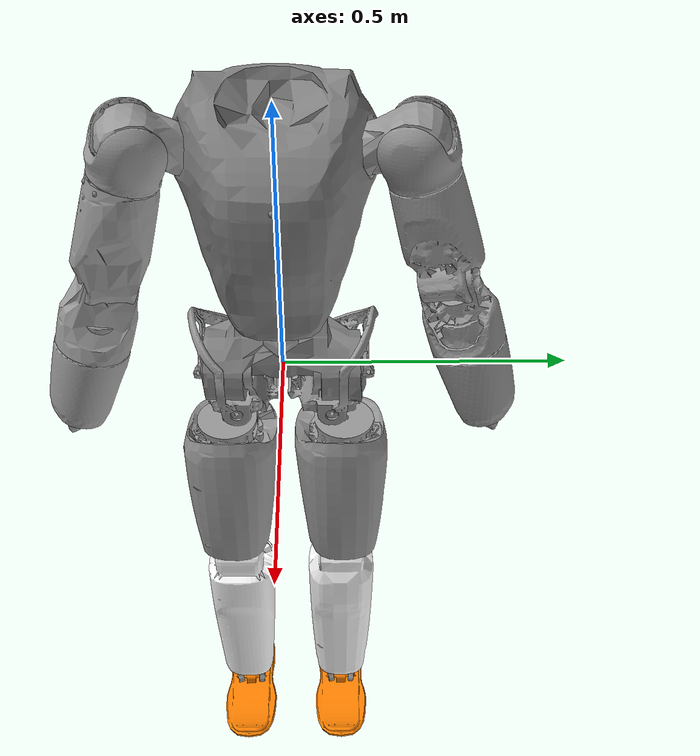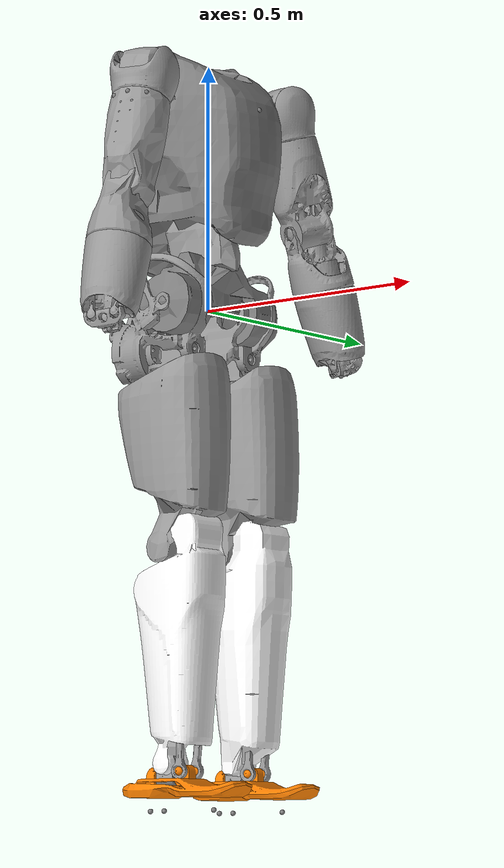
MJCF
<?xml version='1.0' encoding='utf-8'?>
<mujoco model="gene01_nohands">
  <compiler angle="radian" meshdir="../../meshes" />
  <asset>
    <mesh name="sim_gene01_torso_1" content_type="model/stl" file="sim_gene01_torso_1.stl" scale="0.001 0.001 0.001" />
    <mesh name="sim_gene01_torso_2" content_type="model/stl" file="sim_gene01_torso_2.stl" scale="0.001 0.001 0.001" />
    <mesh name="sim_gene01_l_hip_1" content_type="model/stl" file="sim_gene01_l_hip_1.stl" scale="0.001 0.001 0.001" />
    <mesh name="sim_gene01_r_hip_1" content_type="model/stl" file="sim_gene01_r_hip_1.stl" scale="0.001 0.001 0.001" />
    <mesh name="sim_gene01_r_hip_2" content_type="model/stl" file="sim_gene01_r_hip_2.stl" scale="0.001 0.001 0.001" />
    <mesh name="sim_gene01_r_upper_leg" content_type="model/stl" file="sim_gene01_r_upper_leg.stl" scale="0.001 0.001 0.001" />
    <mesh name="sim_gene01_r_lower_leg" content_type="model/stl" file="sim_gene01_r_lower_leg.stl" scale="0.001 0.001 0.001" />
    <mesh name="sim_gene01_r_ankle_1" content_type="model/stl" file="sim_gene01_r_ankle_1.stl" scale="0.001 0.001 0.001" />
    <mesh name="sim_gene01_r_crank_1" content_type="model/stl" file="sim_gene01_r_crank_1.stl" scale="0.001 0.001 0.001" />
    <mesh name="sim_gene01_r_crank_2" content_type="model/stl" file="sim_gene01_r_crank_2.stl" scale="0.001 0.001 0.001" />
    <mesh name="sim_gene01_r_ring_2" content_type="model/stl" file="sim_gene01_r_ring_2.stl" scale="0.001 0.001 0.001" />
    <mesh name="sim_gene01_r_rod_2" content_type="model/stl" file="sim_gene01_r_rod_2.stl" scale="0.001 0.001 0.001" />
    <mesh name="sim_gene01_r_ring_1" content_type="model/stl" file="sim_gene01_r_ring_1.stl" scale="0.001 0.001 0.001" />
    <mesh name="sim_gene01_r_rod_1" content_type="model/stl" file="sim_gene01_r_rod_1.stl" scale="0.001 0.001 0.001" />
    <mesh name="sim_gene01_r_ankle_2" content_type="model/stl" file="sim_gene01_r_ankle_2.stl" scale="0.001 0.001 0.001" />
    <mesh name="sim_gene01_r_foot_lowpoly" content_type="model/stl" file="sim_gene01_r_foot_lowpoly.stl" scale="0.001 0.001 0.001" />
    <mesh name="sim_gene01_l_hip_2" content_type="model/stl" file="sim_gene01_l_hip_2.stl" scale="0.001 0.001 0.001" />
    <mesh name="sim_gene01_l_upper_leg" content_type="model/stl" file="sim_gene01_l_upper_leg.stl" scale="0.001 0.001 0.001" />
    <mesh name="sim_gene01_l_lower_leg" content_type="model/stl" file="sim_gene01_l_lower_leg.stl" scale="0.001 0.001 0.001" />
    <mesh name="sim_gene01_l_ankle_1" content_type="model/stl" file="sim_gene01_l_ankle_1.stl" scale="0.001 0.001 0.001" />
    <mesh name="sim_gene01_l_crank_1" content_type="model/stl" file="sim_gene01_l_crank_1.stl" scale="0.001 0.001 0.001" />
    <mesh name="sim_gene01_l_crank_2" content_type="model/stl" file="sim_gene01_l_crank_2.stl" scale="0.001 0.001 0.001" />
    <mesh name="sim_gene01_l_ring_2" content_type="model/stl" file="sim_gene01_l_ring_2.stl" scale="0.001 0.001 0.001" />
    <mesh name="sim_gene01_l_rod_2" content_type="model/stl" file="sim_gene01_l_rod_2.stl" scale="0.001 0.001 0.001" />
    <mesh name="sim_gene01_l_ring_1" content_type="model/stl" file="sim_gene01_l_ring_1.stl" scale="0.001 0.001 0.001" />
    <mesh name="sim_gene01_l_rod_1" content_type="model/stl" file="sim_gene01_l_rod_1.stl" scale="0.001 0.001 0.001" />
    <mesh name="sim_gene01_l_ankle_2" content_type="model/stl" file="sim_gene01_l_ankle_2.stl" scale="0.001 0.001 0.001" />
    <mesh name="sim_gene01_l_foot_lowpoly" content_type="model/stl" file="sim_gene01_l_foot_lowpoly.stl" scale="0.001 0.001 0.001" />
    <mesh name="sim_gene01_chest" content_type="model/stl" file="sim_gene01_chest.stl" scale="0.001 0.001 0.001" />
    <mesh name="sim_gene01_l_shoulder_1" content_type="model/stl" file="sim_gene01_l_shoulder_1.stl" scale="0.001 0.001 0.001" />
    <mesh name="sim_gene01_r_shoulder_1" content_type="model/stl" file="sim_gene01_r_shoulder_1.stl" scale="0.001 0.001 0.001" />
    <mesh name="sim_gene01_r_shoulder_2" content_type="model/stl" file="sim_gene01_r_shoulder_2.stl" scale="0.001 0.001 0.001" />
    <mesh name="sim_gene01_r_upperarm" content_type="model/stl" file="sim_gene01_r_upperarm.stl" scale="0.001 0.001 0.001" />
    <mesh name="sim_gene01_r_forearm" content_type="model/stl" file="sim_gene01_r_forearm.stl" scale="0.001 0.001 0.001" />
    <mesh name="sim_gene01_r_wrist_1" content_type="model/stl" file="sim_gene01_r_wrist_1.stl" scale="0.001 0.001 0.001" />
    <mesh name="sim_gene01_r_wrist_2" content_type="model/stl" file="sim_gene01_r_wrist_2.stl" scale="0.001 0.001 0.001" />
    <mesh name="sim_gene01_r_wrist_crank_1" content_type="model/stl" file="sim_gene01_r_wrist_crank_1.stl" scale="0.001 0.001 0.001" />
    <mesh name="sim_gene01_r_wrist_crank_2" content_type="model/stl" file="sim_gene01_r_wrist_crank_2.stl" scale="0.001 0.001 0.001" />
    <mesh name="sim_gene01_r_wrist_3" content_type="model/stl" file="sim_gene01_r_wrist_3.stl" scale="0.001 0.001 0.001" />
    <mesh name="sim_gene01_r_wrist_cross_1" content_type="model/stl" file="sim_gene01_r_wrist_cross_1.stl" scale="0.001 0.001 0.001" />
    <mesh name="sim_gene01_r_wrist_cross_2" content_type="model/stl" file="sim_gene01_r_wrist_cross_2.stl" scale="0.001 0.001 0.001" />
    <mesh name="sim_gene01_r_wrist_rod_2" content_type="model/stl" file="sim_gene01_r_wrist_rod_2.stl" scale="0.001 0.001 0.001" />
    <mesh name="sim_gene01_r_wrist_rod_1" content_type="model/stl" file="sim_gene01_r_wrist_rod_1.stl" scale="0.001 0.001 0.001" />
    <mesh name="sim_gene01_l_shoulder_2" content_type="model/stl" file="sim_gene01_l_shoulder_2.stl" scale="0.001 0.001 0.001" />
    <mesh name="sim_gene01_l_upperarm" content_type="model/stl" file="sim_gene01_l_upperarm.stl" scale="0.001 0.001 0.001" />
    <mesh name="sim_gene01_l_forearm" content_type="model/stl" file="sim_gene01_l_forearm.stl" scale="0.001 0.001 0.001" />
    <mesh name="sim_gene01_l_wrist_1" content_type="model/stl" file="sim_gene01_l_wrist_1.stl" scale="0.001 0.001 0.001" />
    <mesh name="sim_gene01_l_wrist_2" content_type="model/stl" file="sim_gene01_l_wrist_2.stl" scale="0.001 0.001 0.001" />
    <mesh name="sim_gene01_l_wrist_crank_1" content_type="model/stl" file="sim_gene01_l_wrist_crank_1.stl" scale="0.001 0.001 0.001" />
    <mesh name="sim_gene01_l_wrist_crank_2" content_type="model/stl" file="sim_gene01_l_wrist_crank_2.stl" scale="0.001 0.001 0.001" />
    <mesh name="sim_gene01_l_wrist_3" content_type="model/stl" file="sim_gene01_l_wrist_3.stl" scale="0.001 0.001 0.001" />
    <mesh name="sim_gene01_l_wrist_cross_1" content_type="model/stl" file="sim_gene01_l_wrist_cross_1.stl" scale="0.001 0.001 0.001" />
    <mesh name="sim_gene01_l_wrist_cross_2" content_type="model/stl" file="sim_gene01_l_wrist_cross_2.stl" scale="0.001 0.001 0.001" />
    <mesh name="sim_gene01_l_wrist_rod_2" content_type="model/stl" file="sim_gene01_l_wrist_rod_2.stl" scale="0.001 0.001 0.001" />
    <mesh name="sim_gene01_l_wrist_rod_1" content_type="model/stl" file="sim_gene01_l_wrist_rod_1.stl" scale="0.001 0.001 0.001" />
  </asset>
  <worldbody>
    <body name="torso_1">
      <inertial pos="0.00133474 -1.32644e-05 0.0218008" quat="0.700675 0.701622 -0.0910889 0.0921081" mass="6.07683" diaginertia="0.0507722 0.0469397 0.017043" />
      <joint name="floating_base_joint" type="free" />
      <geom type="mesh" mesh="sim_gene01_torso_1" contype="0" conaffinity="0" />
      <body name="torso_2" pos="0 0 0.161" quat="1 0 0 0">
        <inertial pos="-0.0156033 -5.40072e-05 -0.0171571" quat="0.67378 -0.221684 -0.22455 0.668172" mass="2.30786" diaginertia="0.00571983 0.00496454 0.00361136" />
        <joint name="torso_yaw" pos="0 0 0" axis="0 0 1" range="-0.785398 0.785398" actuatorfrcrange="-1000000000 1000000000" damping="0.0" frictionloss="0.0" armature="0.0577" />
        <geom type="mesh" rgba="0.6 0.6 0.6 1" mesh="sim_gene01_torso_2" contype="2" conaffinity="5" />
        <body name="chest" pos="-0.053 0 0">
          <inertial pos="0.0431573 0.000189942 0.162975" quat="0.995476 0.00355052 -0.0949402 0.00100016" mass="11.359" diaginertia="0.172987 0.155884 0.0890161" />
          <joint name="torso_roll" pos="0 0 0" axis="1 0 0" range="-0.785398 0.785398" actuatorfrcrange="-1000000000 1000000000" damping="0.0" frictionloss="0.0" armature="0.0577" />
          <geom type="mesh" mesh="sim_gene01_chest" contype="2" conaffinity="5" />
          <body name="l_shoulder_1" pos="0.0272776 0.106003 0.235236" quat="0.969332 0.208229 -0.0274138 -0.127615">
            <inertial pos="0.0144051 0.101849 4.3421e-05" quat="0.696574 0.701623 -0.0253378 -0.147877" mass="1.32103" diaginertia="0.00318912 0.00317986 0.00112672" />
            <joint name="l_shoulder_pitch" pos="0 0 0" axis="0 1 0" range="-2.35619 0.785398" actuatorfrcrange="-1000000000 1000000000" damping="0.0" frictionloss="0.0" armature="0.0577" />
            <geom type="mesh" rgba="0.6 0.6 0.6 1" mesh="sim_gene01_l_shoulder_1" contype="1" conaffinity="6" />
            <body name="l_shoulder_2" pos="0.0500248 0.123987 1.31115e-05" quat="0.997892 -0.0649015 -0.000171739 -0.000195831">
              <inertial pos="-0.0353104 -7.45315e-05 -0.0917563" quat="0.691813 0.0885964 0.0840724 0.711673" mass="1.35903" diaginertia="0.0024925 0.00243733 0.00156598" />
              <joint name="l_shoulder_roll" pos="0 0 0" axis="-1 0 0" range="-2.61799 0.261799" actuatorfrcrange="-1000000000 1000000000" damping="0.0" frictionloss="0.0" armature="0.0254" />
              <geom type="mesh" rgba="0.6 0.6 0.6 1" mesh="sim_gene01_l_shoulder_2" contype="1" conaffinity="6" />
              <body name="l_upper_arm" pos="-0.037 0 -0.127" quat="1 0 0 0">
                <inertial pos="-0.000333481 0.000761953 -0.0964643" quat="0.999776 0.00806116 -0.00325385 -0.0192937" mass="1.3025" diaginertia="0.00348806 0.00340567 0.00118983" />
                <joint name="l_shoulder_yaw" pos="0 0 0" axis="0 0 -1" range="-1.8326 1.8326" actuatorfrcrange="-1000000000 1000000000" damping="0.0" frictionloss="0.0" armature="0.0254" />
                <geom type="mesh" rgba="0.6 0.6 0.6 1" mesh="sim_gene01_l_upperarm" contype="1" conaffinity="6" />
                <body name="l_forearm" pos="0 0.0295 -0.1245" quat="1 0 0 0">
                  <inertial pos="-0.00258873 -0.0308511 -0.146264" quat="0.998449 -0.0139778 0.00723199 -0.053404" mass="2.196" diaginertia="0.0127529 0.0126436 0.00184909" />
                  <joint name="l_elbow" pos="0 0 0" axis="0 1 0" range="-1.91986 0.0872665" actuatorfrcrange="-1000000000 1000000000" damping="0.0" frictionloss="0.0" armature="0.0254" />
                  <geom type="mesh" rgba="0.6 0.6 0.6 1" mesh="sim_gene01_l_forearm" contype="1" conaffinity="6" />
                  <geom pos="2.00697e-09 -0.02945 -0.1067" quat="1 1.1636e-08 2.01542e-08 -2.20678e-06" type="mesh" rgba="0.6 0.6 0.6 1" mesh="sim_gene01_l_wrist_1" contype="1" conaffinity="6" />
                  <geom pos="-4.93156e-08 -0.03945 -0.285" quat="0.999048 -8.46421e-08 -0.0436233 -2.20518e-06" type="mesh" rgba="0.6 0.6 0.6 1" mesh="sim_gene01_l_wrist_2" contype="1" conaffinity="6" />
                  <geom pos="-0.00675674 -0.0029697 -0.14684" quat="0.995277 -0.0389779 -0.0669868 -0.0584535" type="mesh" rgba="0.6 0.6 0.6 1" mesh="sim_gene01_l_wrist_crank_1" contype="1" conaffinity="6" />
                  <geom pos="-0.0299633 -0.0379499 -0.205382" quat="0.703174 -0.061054 -0.0744862 0.704465" type="mesh" rgba="0.6 0.6 0.6 1" mesh="sim_gene01_l_wrist_crank_2" contype="1" conaffinity="6" />
                  <geom pos="-4.93156e-08 -0.03945 -0.285" quat="0.999048 2.44649e-07 -0.0436233 -2.19081e-06" type="mesh" rgba="0.6 0.6 0.6 1" mesh="sim_gene01_l_wrist_3" contype="1" conaffinity="6" />
                  <geom pos="0.0241229 -0.0125476 -0.285238" quat="0.998372 -0.0373883 -0.043042 -0.00183552" type="mesh" rgba="0.6 0.6 0.6 1" mesh="sim_gene01_l_wrist_cross_1" contype="1" conaffinity="6" />
                  <geom pos="-0.0237091 -0.0125261 -0.289371" quat="0.997612 -0.0539818 -0.0430055 -0.00255087" type="mesh" rgba="0.6 0.6 0.6 1" mesh="sim_gene01_l_wrist_cross_2" contype="1" conaffinity="6" />
                  <geom pos="-0.0237091 -0.0125261 -0.289371" quat="0.997612 -0.0539818 -0.0430016 -0.00255109" type="mesh" rgba="0.6 0.6 0.6 1" mesh="sim_gene01_l_wrist_rod_2" contype="1" conaffinity="6" />
                  <geom pos="0.0241229 -0.0125476 -0.285238" quat="0.998372 -0.0373882 -0.043038 -0.00183567" type="mesh" rgba="0.6 0.6 0.6 1" mesh="sim_gene01_l_wrist_rod_1" contype="1" conaffinity="6" />
                  <site name="l_wrist_crank_2" pos="-0.029963293852084138 -0.037949857081026564 -0.20538161695216034" quat="0.7031742114312306 -0.061053974249018976 -0.07448621907522286 0.7044645085271116" />
                  <site name="l_hand" pos="0.002012370825738534 -0.03944998060025139 -0.30799998438691917" quat="0.9990480500524528 2.446491980058511e-07 -0.043623315801670386 -2.1908060873869115e-06" />
                  <site name="l_wrist_rod_1" pos="0.024122878243320944 -0.012547553581075845 -0.28523848284489456" quat="0.9983719131827243 -0.03738824429815533 -0.04303803530226191 -0.0018356670421019715" />
                  <site name="l_wrist_cross_1" pos="0.02412287824332096 -0.012547553581075947 -0.28523848284489445" quat="0.9983717437048912 -0.037388251526138415 -0.043041966572947676 -0.0018355198190746734" />
                  <site name="l_wrist_1" pos="2.006969326839858e-09 -0.029449991618085702 -0.10669999996081225" quat="0.9999999999975648 1.1635974590589096e-08 2.0154191832210858e-08 -2.206777697185388e-06" />
                  <site name="l_wrist_rod_2" pos="-0.023709076817371513 -0.01252611538506954 -0.28937124698972083" quat="0.9976123087432812 -0.05398182248669124 -0.043001584216392025 -0.0025510860032584965" />
                  <site name="l_wrist_crank_sph_1" pos="0.026427316711109084 0.0031735599195208053 -0.14304510404525445" quat="0.995277189202155 -0.03897792361435127 -0.06698678025115977 -0.05845348061625147" />
                  <site name="l_wrist_crank_sph_2" pos="-0.039406950807211315 -0.005455733807598673 -0.20658548405659968" quat="0.7031742114312309 -0.06105397424901937 -0.07448621907522328 0.7044645085271113" />
                  <site name="l_wrist_2" pos="-4.9315560127182e-08 -0.03944998747332501 -0.2850000002126041" quat="0.9990480500524791 -8.46421059353031e-08 -0.04362331580094587 -2.2051845536066694e-06" />
                  <site name="l_wrist_crank_1" pos="-0.006756737787118255 -0.0029697041317012576 -0.1468395120239891" quat="0.995277189202155 -0.03897792361435226 -0.0669867802511597 -0.05845348061625095" />
                  <site name="l_wrist_rod_sph_2" pos="-0.03940690884350906 -0.005455779350496941 -0.20658570727720293" quat="0.7031745738149762 -0.06105441249998534 -0.07448585775704 0.7044641470285101" />
                  <site name="l_wrist_rod_sph_1" pos="0.026382596414184868 0.0028258409063866754 -0.14300587436245007" quat="0.995262106310844 -0.03899072184007513 -0.06721044887664883 -0.05844500760451242" />
                  <site name="l_wrist_3" pos="-4.931556014791994e-08 -0.03944998747332512 -0.2850000002126041" quat="0.9990480500524528 2.446491980058511e-07 -0.043623315801670386 -2.1908060873869115e-06" />
                  <site name="l_wrist_cross_2" pos="-0.023709077346377512 -0.01252611538500241 -0.28937124703540723" quat="0.9976121400006474 -0.05398183123850838 -0.04300550035850144 -0.002550874042538695" />
                </body>
              </body>
            </body>
          </body>
          <body name="r_shoulder_1" pos="0.0272776 -0.106003 0.235236" quat="0.969332 -0.208229 -0.0274138 0.127615">
            <inertial pos="0.0145942 -0.1016 0.00010596" quat="0.688367 0.710074 0.0295286 0.145164" mass="1.31473" diaginertia="0.00318265 0.00316306 0.00110189" />
            <joint name="r_shoulder_pitch" pos="0 0 0" axis="0 1 0" range="-2.35619 0.785398" actuatorfrcrange="-1000000000 1000000000" damping="0.0" frictionloss="0.0" armature="0.0577" />
            <geom type="mesh" rgba="0.6 0.6 0.6 1" mesh="sim_gene01_r_shoulder_1" contype="4" conaffinity="3" />
            <body name="r_shoulder_2" pos="0.05 -0.124 0" quat="0.997859 0.0654031 0 0">
              <inertial pos="-0.0353037 -8.53136e-05 -0.0916318" quat="0.69003 0.0893016 0.0835628 0.713373" mass="1.35363" diaginertia="0.00248415 0.00242794 0.00155885" />
              <joint name="r_shoulder_roll" pos="0 0 0" axis="1 0 0" range="-2.61799 0.261799" actuatorfrcrange="-1000000000 1000000000" damping="0.0" frictionloss="0.0" armature="0.0254" />
              <geom type="mesh" rgba="0.6 0.6 0.6 1" mesh="sim_gene01_r_shoulder_2" contype="4" conaffinity="3" />
              <body name="r_upper_arm" pos="-0.037 0 -0.127" quat="1 0 0 0">
                <inertial pos="-0.000135071 -9.78389e-05 -0.0973333" quat="0.999884 -0.00248479 -0.00739798 -0.0130713" mass="1.31268" diaginertia="0.00349196 0.00336793 0.00123086" />
                <joint name="r_shoulder_yaw" pos="0 0 0" axis="0 0 1" range="-1.8326 1.8326" actuatorfrcrange="-1000000000 1000000000" damping="0.0" frictionloss="0.0" armature="0.0254" />
                <geom type="mesh" rgba="0.6 0.6 0.6 1" mesh="sim_gene01_r_upperarm" contype="4" conaffinity="3" />
                <body name="r_forearm" pos="0 -0.0295 -0.1245" quat="1 -4.35219e-12 0 0">
                  <inertial pos="0.00275591 0.0313351 -0.15356" quat="0.692813 -6.16046e-05 -0.0108386 0.721036" mass="2.21164" diaginertia="0.0111595 0.0108816 0.00185674" />
                  <joint name="r_elbow" pos="0 0 0" axis="0 1 8.70427e-12" range="-1.91986 0.0872665" actuatorfrcrange="-1000000000 1000000000" damping="0.0" frictionloss="0.0" armature="0.0254" />
                  <geom type="mesh" rgba="0.6 0.6 0.6 1" mesh="sim_gene01_r_forearm" contype="4" conaffinity="3" />
                  <geom pos="0 0.02945 -0.106" quat="1 0 0 0" type="mesh" rgba="0.6 0.6 0.6 1" mesh="sim_gene01_r_wrist_1" contype="4" conaffinity="3" />
                  <geom pos="0 0.03945 -0.285" quat="0.99905 0 -0.0435802 0" type="mesh" rgba="0.6 0.6 0.6 1" mesh="sim_gene01_r_wrist_2" contype="4" conaffinity="3" />
                  <geom pos="0.00675686 0.00296974 -0.14684" quat="0.0608375 0.00282629 -0.0351371 0.997525" type="mesh" rgba="0.6 0.6 0.6 1" mesh="sim_gene01_r_wrist_crank_1" contype="4" conaffinity="3" />
                  <geom pos="0.0299633 0.03795 -0.205382" quat="0.706946 -0.120072 0.0150965 -0.696838" type="mesh" rgba="0.6 0.6 0.6 1" mesh="sim_gene01_r_wrist_crank_2" contype="4" conaffinity="3" />
                  <geom pos="0 0.03945 -0.285" quat="0.99905 0 -0.0435802 0" type="mesh" rgba="0.6 0.6 0.6 1" mesh="sim_gene01_r_wrist_3" contype="4" conaffinity="3" />
                  <geom pos="-0.023704 0.0125527 -0.289434" quat="0.998398 0.0361298 -0.0435169 0.0015773" type="mesh" rgba="0.6 0.6 0.6 1" mesh="sim_gene01_r_wrist_cross_1" contype="4" conaffinity="3" />
                  <geom pos="0.0241137 0.0125527 -0.285254" quat="0.997608 0.0536856 -0.0434762 0.00234373" type="mesh" rgba="0.6 0.6 0.6 1" mesh="sim_gene01_r_wrist_cross_2" contype="4" conaffinity="3" />
                  <geom pos="0.0241137 0.0125527 -0.285254" quat="0.997605 0.0536858 -0.0435574 0.00233936" type="mesh" rgba="0.6 0.6 0.6 1" mesh="sim_gene01_r_wrist_rod_2" contype="4" conaffinity="3" />
                  <geom pos="-0.023704 0.0125527 -0.289434" quat="0.998398 0.0361298 -0.0435186 0.00157724" type="mesh" rgba="0.6 0.6 0.6 1" mesh="sim_gene01_r_wrist_rod_1" contype="4" conaffinity="3" />
                  <site name="r_wrist_2" pos="-2.5904679790134167e-13 0.03945000000006501 -0.2849999999999369" quat="0.9990499297706554 -1.9850319169915336e-14 -0.04358024581445609 2.7840468953347382e-15" />
                  <site name="r_wrist_rod_sph_2" pos="0.040554749227474304 0.005811468909395951 -0.2025162079039516" quat="0.7069426885617706 -0.12008727679330194 0.015080810278932027 -0.6968383242924825" />
                  <site name="r_wrist_crank_sph_2" pos="0.040554749228025384 0.005811468909463387 -0.20251620790290054" quat="0.7069456100584218 -0.12007244340123994 0.015096503530108813 -0.6968375767249835" />
                  <site name="r_wrist_rod_sph_1" pos="-0.02668962822439127 -0.0028478536480850258 -0.14720356426982942" quat="0.060839737814696856 0.002839026641390608 -0.035134168619392975 0.997524965314549" />
                  <site name="r_wrist_crank_sph_1" pos="-0.026699888488623306 -0.0028476920941347293 -0.14720461456484202" quat="0.06083750106603744 0.0028262866033118175 -0.03513714435564599 0.9975250330967169" />
                  <site name="r_wrist_1" pos="-2.6192936708469006e-13 0.029450000000092014 -0.10599999999995047" quat="1.0 -1.9631865577630886e-14 -2.4071022952654207e-14 1.554312234474857e-15" />
                  <site name="r_wrist_crank_2" pos="0.029963254366630963 0.03795000000005396 -0.205381617990695" quat="0.7069456100584219 -0.12007244340123953 0.015096503530108434 -0.6968375767249834" />
                  <site name="r_wrist_rod_1" pos="-0.023703977338102703 0.01255269954461683 -0.2894335314101453" quat="0.9983978580915206 0.036129760477607506 -0.04351861295216769 0.0015772421545193504" />
                  <site name="r_hand" pos="0.002010437029541718 0.039450000000064336 -0.30800015760359517" quat="0.9990499297706554 -1.705346588568794e-14 -0.043580245814456284 2.3563642314353923e-15" />
                  <site name="r_wrist_cross_2" pos="0.02411369254257394 0.012552674693768365 -0.2852539366504269" quat="0.9976082277871586 0.05368563774011745 -0.043476235850526686 0.002343729521693107" />
                  <site name="r_wrist_crank_1" pos="0.006756855048134754 0.0029697432819356384 -0.14683951294743455" quat="0.06083750106603744 0.0028262866033118175 -0.03513714435564599 0.9975250330967169" />
                  <site name="r_wrist_cross_1" pos="-0.02370397733810316 0.01255269954469045 -0.2894335314101397" quat="0.9983979318437949 0.036129757804504795 -0.04351692090497596 0.0015773033858759143" />
                  <site name="r_wrist_3" pos="-2.5894866983990513e-13 0.03945000000006512 -0.28499999999993725" quat="0.9990499297706554 -1.7075584190749443e-14 -0.043580245814456284 2.8634125673355194e-15" />
                  <site name="r_wrist_rod_2" pos="0.02411369254254628 0.01255267469435277 -0.2852539366514828" quat="0.9976046866516116 0.05368582828301707 -0.04355741501609049 0.002339360900415389" />
                </body>
                <site name="r_upper_arm_taxel_11" pos="0.010837895132196122 -0.05355815611426851 -0.03892406182834418" quat="0.7052030957650527 0.7052031000429335 0.05185162267375795 0.05185162137600396" />
                <site name="r_upper_arm_taxel_9" pos="0.0 0.0 0.0" quat="1.0 0.0 0.0 0.0" />
                <site name="r_upper_arm_taxel_1" pos="0.010907917932137044 -0.0534448007393028 -0.015924061827834457" quat="0.7049300734770886 0.704930077761519 0.055439954528319284 0.05543995325235361" />
                <site name="r_upper_arm_taxel_5" pos="-0.010949439420359329 -0.053319606776149 0.006075938222606991" quat="0.7046859896910029 0.7046859937149844 -0.05846069605920978 -0.05846069800651678" />
                <site name="r_upper_arm_taxel_2" pos="0.010973920378101805 -0.05330924943954829 0.006075938172814377" quat="0.7045843139665657 0.7045843182585837 0.05967362535307904 0.0596736241028739" />
                <site name="r_upper_arm_taxel_10" pos="0.01076745591671099 -0.05364542927880256 -0.06192406182869892" quat="0.7054237138844798 0.7054237181566282 0.04875839353325052 0.04875839221674798" />
                <site name="r_upper_arm_tof_2" pos="0.0002359593742135152 -0.05595065875384042 0.050375466892344845" quat="0.7084461513265761 0.7057616855880919 0.0014817004850874807 0.0015160442241969184" />
                <site name="r_upper_arm_taxel_7" pos="-0.011100411089264114 -0.053545905233851054 -0.03892406177838459" quat="0.7052207234133807 0.7052207274560918 -0.05161131967721642 -0.05161132158533514" />
                <site name="r_upper_arm_taxel_3" pos="0.011179706475647318 -0.05312518624016416 0.027415938173432686" quat="0.7040710288682609 0.7040710331703913 0.0654521455637949 0.06545214434884426" />
                <site name="r_upper_arm_tof_1" pos="-0.03423300579041269 -0.044589522894563305 0.050375907096162464" quat="0.6822829285434708 0.6549998795595356 -0.23382913208195072 -0.22536437203990492" />
                <site name="r_upper_arm_tof_3" pos="0.03460748716930666 -0.04429815735796794 0.05037869849495391" quat="0.6813324582971246 0.6539952074130301 0.2365716168292128 0.2282766305656291" />
                <site name="r_upper_arm_taxel_4" pos="-0.01087643448536027 -0.05317803895604556 0.02741593822327615" quat="0.7042973521415805 0.7042973561530149 -0.06297012638445569 -0.0629701283574799" />
                <site name="r_upper_arm_taxel_8" pos="-0.011176963283650095 -0.05362145164513221 -0.06192406177865584" quat="0.7053971168965694 0.7053971209459371 -0.04914167808005094 -0.049141679974002435" />
                <site name="r_upper_arm_taxel_6" pos="-0.01102359094622854 -0.05344348407402699 -0.01592406177795458" quat="0.7049905476322427 0.7049905516666509 -0.05466557234408346 -0.0546655742696957" />
              </body>
            </body>
          </body>
          <site name="chest_camera_front" pos="0.1844182399975267 -7.150232912285982e-14 0.23056900000007263" quat="0.5000000000001968 0.4999999999999999 0.49999999999980316 0.5000000000000001" />
          <site name="depth_camera" pos="0.1544506403026876 0.017499998844483892 -0.01745064146133668" quat="-0.2705980284453642 0.6532814913965381 -0.6532814734797312 0.2705980717010893" />
          <camera name="chest_depth_camera" pos="0.1544506403026876 0.017499998844483892 -0.01745064146133668" quat="-0.6532814913965382 -0.2705980284453642 0.2705980717010893 0.6532814734797313" fovy="60.0" />
          <site name="chest_imu" pos="0.09959999999989542 0.007700345832498567 0.06779509453619936" quat="0.7071067811894861 -2.3558288653191536e-08 -0.707106781183608 2.3563320294961446e-08" />
          <site name="rgb_camera" pos="0.15445064030267622 -0.011500001155516046 -0.01745063954116466" quat="-0.2705980284453642 0.6532814913965381 -0.6532814734797312 0.2705980717010893" />
        </body>
      </body>
      <body name="l_hip_1" pos="0.0061 0.07 0" quat="1 0 0 0">
        <inertial pos="-0.0631137 0.0158786 -0.0779099" quat="0.828651 0.217106 0.357956 0.371579" mass="2.51765" diaginertia="0.00874737 0.00827537 0.00595271" />
        <joint name="l_hip_pitch" pos="0 0 0" axis="0 1 0" range="-1.95477 0.523599" actuatorfrcrange="-1000000000 1000000000" damping="0.0" frictionloss="0.0" armature="0.25" />
        <geom type="mesh" rgba="0.6 0.6 0.6 1" mesh="sim_gene01_l_hip_1" contype="1" conaffinity="6" />
        <body name="l_hip_2" pos="-0.0585 0.0163 -0.09" quat="1 0 0 0">
          <inertial pos="0.0555811 0.018143 -0.0786529" quat="0.679102 -0.0690425 -0.286065 0.672474" mass="2.44583" diaginertia="0.00658506 0.00647751 0.00410242" />
          <joint name="l_hip_roll" pos="0 0 0" axis="-1 0 0" range="-0.959931 0.261799" actuatorfrcrange="-1000000000 1000000000" damping="0.0" frictionloss="0.0" armature="0.25" />
          <geom type="mesh" rgba="0.6 0.6 0.6 1" mesh="sim_gene01_l_hip_2" contype="1" conaffinity="6" />
          <body name="l_upper_leg" pos="0.06095 0.022 -0.1242" quat="1 0 0 0">
            <inertial pos="0.00194934 -0.00433907 -0.105103" quat="0.61581 0.0288329 0.0496921 0.785798" mass="5.24853" diaginertia="0.0367121 0.0355138 0.0100246" />
            <joint name="l_hip_yaw" pos="0 0 0" axis="0 0 -1" range="-1.22173 1.22173" actuatorfrcrange="-1000000000 1000000000" damping="0.0" frictionloss="0.0" armature="0.0577" />
            <geom type="mesh" rgba="0.6 0.6 0.6 1" mesh="sim_gene01_l_upper_leg" contype="1" conaffinity="6" />
            <body name="l_lower_leg" pos="-0.02855 -0.02245 -0.2658" quat="1 0 0 0">
              <inertial pos="0.0362856 0.0145932 -0.128088" quat="0.414419 0.0374505 0.00300293 0.90931" mass="4.75938" diaginertia="0.0774774 0.0768699 0.00575335" />
              <joint name="l_knee" pos="0 0 0" axis="0 1 0" range="-0.0523599 2.35619" actuatorfrcrange="-1000000000 1000000000" damping="0.0" frictionloss="0.0" armature="0.25" />
              <geom type="mesh" rgba="1 1 1 1" mesh="sim_gene01_l_lower_leg" contype="1" conaffinity="6" />
              <body name="l_ankle_1" pos="0.0149861 0.01775 -0.420239" quat="1 0 -1.2125e-07 0">
                <inertial pos="-0.00408682 0.00027965 -0.0179458" quat="0.67348 0.2085 0.240967 0.666999" mass="0.245451" diaginertia="0.000109833 7.89642e-05 6.12522e-05" />
                <joint name="l_ankle_pitch" pos="0 0 0" axis="0 1 0" range="-1.0472 0.523599" actuatorfrcrange="-1000000000 1000000000" damping="0.0" frictionloss="0.0" />
                <geom type="mesh" rgba="0.6 0.6 0.6 1" mesh="sim_gene01_l_ankle_1" contype="1" conaffinity="6" />
                <body name="l_ankle_2" pos="0 0 -0.03" quat="1 0 0 0">
                  <inertial pos="0.0369984 2.8398e-07 -0.0312331" quat="-4.44061e-05 0.737951 -2.68168e-05 0.674855" mass="1.14502" diaginertia="0.00626244 0.00615534 0.00117474" />
                  <joint name="l_ankle_roll" pos="0 0 0" axis="-1 0 0" range="-0.436332 0.436332" actuatorfrcrange="-1000000000 1000000000" damping="0.0" frictionloss="0.0" />
                  <geom type="mesh" rgba="1 0.51 0 1" mesh="sim_gene01_l_ankle_2" contype="1" conaffinity="6" />
                  <geom type="mesh" rgba="1 0.51 0 1" mesh="sim_gene01_l_foot_lowpoly" contype="1" conaffinity="6" />
                  <site name="l_sole_rear" pos="-0.049999999999999996 -2.7755575615626867e-17 -0.061000000000000304" quat="1.0 -6.669591693910217e-30 2.6469779601696886e-23 -2.5240467479161358e-29" />
                  <site name="l_ankle_sph_1" pos="0.04349999999999964 -0.024000000000000018 0.013999999999999901" quat="1.0 0.0 0.0 -3.081487911019578e-33" />
                  <site name="l_ankle_sph_2" pos="0.043499999999999636 0.023999999999999976 0.013999999999999901" quat="1.0 0.0 0.0 -3.081487911019578e-33" />
                  <site name="l_foot" pos="-7.806255641895632e-18 -2.7755575615628914e-17 -0.025000000000000272" quat="1.0 -6.669591693910217e-30 2.6469779601696886e-23 -2.524354896707238e-29" />
                  <site name="l_sole" pos="-0.015000000000000003 -2.775557561562863e-17 -0.06100000000000025" quat="1.0 -6.669591693910217e-30 2.6469779601696886e-23 -2.5240467479161358e-29" />
                  <site name="l_sole_front" pos="0.10999999999999997 -2.775557561563494e-17 -0.06100000000000025" quat="1.0 -6.669591693910217e-30 2.6469779601696886e-23 -2.5240467479161358e-29" />
                </body>
              </body>
              <body name="l_crank_1" pos="0.065228 0.01775 -0.0983931" quat="0.689548 0.0959043 0.156598 -0.700573">
                <inertial pos="0.00843524 0.00226853 -5.74377e-09" quat="0.464458 0.464458 0.533178 0.533178" mass="0.198088" diaginertia="0.000118964 8.82888e-05 4.03384e-05" />
                <joint name="l_ankle_motor_1" pos="0 0 0" axis="0 -1 0" range="-0.689405 1.24267" actuatorfrcrange="-1000000000 1000000000" damping="0.0" frictionloss="0.0" armature="0.0254" />
                <geom type="mesh" rgba="0.6 0.6 0.6 1" mesh="sim_gene01_l_crank_1" contype="1" conaffinity="6" />
                <body name="l_ring_1" pos="0.04 0.02 0" quat="1 0 0 0">
                  <inertial pos="-1.20706e-09 -1.43119e-09 7.37008e-11" quat="0.707107 0 0 0.707107" mass="0.0132603" diaginertia="6.40814e-07 4.44558e-07 4.44558e-07" />
                  <joint name="l_rod_1_u_0" pos="0 0 0" axis="0 -1 0" range="-1.74533 1.74533" actuatorfrcrange="-1000000000 1000000000" damping="0.0" frictionloss="0.0" />
                  <geom type="mesh" rgba="0.6 0.6 0.6 1" mesh="sim_gene01_l_ring_1" contype="1" conaffinity="6" />
                  <body name="l_rod_1" pos="0 0 0" quat="1 0 0 0">
                    <inertial pos="0.0504289 0.00135553 -0.153403" quat="0.980775 -0.0140515 -0.15752 0.114326" mass="0.309901" diaginertia="0.00381339 0.00381339 1.1828e-05" />
                    <joint name="l_rod_1_u_1" pos="0 0 0" axis="-1 0 0" range="-1.74533 1.74533" actuatorfrcrange="-1000000000 1000000000" damping="0.0" frictionloss="0.0" />
                    <geom type="mesh" rgba="0.6 0.6 0.6 1" mesh="sim_gene01_l_rod_1" contype="1" conaffinity="6" />
                    <site name="l_rod_sph_1" pos="0.10100466865467554 0.0027289612509535863 -0.3071845531223209" quat="0.6895559853867278 -0.0958702800145801 -0.15656482049725703 0.7005775398982803" />
                  </body>
                </body>
              </body>
              <body name="l_crank_2" pos="0.0578197 0.01775 -0.18307" quat="0.687497 -0.104822 0.165371 0.699294">
                <inertial pos="0.00843524 -0.00226853 5.74377e-09" quat="0.533178 0.533178 0.464458 0.464458" mass="0.198088" diaginertia="0.000118964 8.82888e-05 4.03384e-05" />
                <joint name="l_ankle_motor_2" pos="0 0 0" axis="0 1 0" range="-1.2322 0.71384" actuatorfrcrange="-1000000000 1000000000" damping="0.0" frictionloss="0.0" armature="0.0254" />
                <geom type="mesh" rgba="0.6 0.6 0.6 1" mesh="sim_gene01_l_crank_2" contype="1" conaffinity="6" />
                <body name="l_ring_2" pos="0.04 -0.02 0" quat="1 0 0 0">
                  <inertial pos="-1.20706e-09 1.43119e-09 -7.37009e-11" quat="0.707107 0 0 0.707107" mass="0.0132603" diaginertia="6.40814e-07 4.44558e-07 4.44558e-07" />
                  <joint name="l_rod_2_u_0" pos="0 0 0" axis="0 1 0" range="-1.74533 1.74533" actuatorfrcrange="-1000000000 1000000000" damping="0.0" frictionloss="0.0" />
                  <geom type="mesh" rgba="0.6 0.6 0.6 1" mesh="sim_gene01_l_ring_2" contype="1" conaffinity="6" />
                  <body name="l_rod_2" pos="0 0 0" quat="1 -1.02122e-11 0 0">
                    <inertial pos="0.0383565 -0.00135333 -0.112103" quat="0.75157 -0.11069 -0.121184 0.638908" mass="0.244243" diaginertia="0.00175184 0.00175183 1.04354e-05" />
                    <joint name="l_rod_2_u_1" pos="0 0 0" axis="1 0 0" range="-1.74533 1.74533" actuatorfrcrange="-1000000000 1000000000" damping="0.0" frictionloss="0.0" />
                    <geom type="mesh" rgba="0.6 0.6 0.6 1" mesh="sim_gene01_l_rod_2" contype="1" conaffinity="6" />
                    <site name="l_rod_sph_2" pos="0.0769110073962523 -0.00272896125083278 -0.22469167707724363" quat="-0.687494983066754 -0.10483185608904946 0.1653803139975939 0.6992927011981647" />
                  </body>
                </body>
              </body>
            </body>
          </body>
        </body>
      </body>
      <body name="r_hip_1" pos="0.0061 -0.07 0">
        <inertial pos="-0.0631154 -0.0153824 -0.0774939" quat="0.411598 0.351254 0.226027 0.810012" mass="2.51765" diaginertia="0.00869687 0.00825222 0.00597229" />
        <joint name="r_hip_pitch" pos="0 0 0" axis="0 1 0" range="-1.95477 0.523599" actuatorfrcrange="-1000000000 1000000000" damping="0.0" frictionloss="0.0" armature="0.25" />
        <geom type="mesh" rgba="0.6 0.6 0.6 1" mesh="sim_gene01_r_hip_1" contype="4" conaffinity="3" />
        <body name="r_hip_2" pos="-0.0585 -0.0163 -0.09" quat="1 0 0 0">
          <inertial pos="0.0552926 -0.0182122 -0.0786529" quat="0.63105 -0.28949 -0.0537849 0.71769" mass="2.44583" diaginertia="0.00657907 0.00648846 0.00408442" />
          <joint name="r_hip_roll" pos="0 0 0" axis="1 0 0" range="-0.959931 0.261799" actuatorfrcrange="-1000000000 1000000000" damping="0.0" frictionloss="0.0" armature="0.25" />
          <geom type="mesh" rgba="0.6 0.6 0.6 1" mesh="sim_gene01_r_hip_2" contype="4" conaffinity="3" />
          <body name="r_upper_leg" pos="0.06095 -0.022 -0.1242" quat="1 0 0 0">
            <inertial pos="0.00175941 0.00436112 -0.105273" quat="0.790673 0.0492129 0.0289692 0.60957" mass="5.24862" diaginertia="0.0367159 0.0355513 0.00998227" />
            <joint name="r_hip_yaw" pos="0 0 0" axis="0 0 1" range="-1.22173 1.22173" actuatorfrcrange="-1000000000 1000000000" damping="0.0" frictionloss="0.0" armature="0.0577" />
            <geom type="mesh" rgba="0.6 0.6 0.6 1" mesh="sim_gene01_r_upper_leg" contype="4" conaffinity="3" />
            <body name="r_lower_leg" pos="-0.02855 0.02245 -0.2658" quat="1 0 0 0">
              <inertial pos="0.0362856 -0.014898 -0.128088" quat="0.906089 0.000513056 0.0387014 0.421314" mass="4.75938" diaginertia="0.0775216 0.0769134 0.00573524" />
              <joint name="r_knee" pos="0 0 0" axis="0 1 0" range="-0.0523599 2.35619" actuatorfrcrange="-1000000000 1000000000" damping="0.0" frictionloss="0.0" armature="0.25" />
              <geom type="mesh" rgba="1 1 1 1" mesh="sim_gene01_r_lower_leg" contype="4" conaffinity="3" />
              <body name="r_ankle_1" pos="0.0149861 -0.01775 -0.420239" quat="1 0 0 0">
                <inertial pos="-0.00403866 0.000117112 -0.0177343" quat="0.673817 0.208057 0.228908 0.671032" mass="0.248377" diaginertia="0.00011093 8.04543e-05 6.21144e-05" />
                <joint name="r_ankle_pitch" pos="0 0 0" axis="0 1 0" range="-1.0472 0.523599" actuatorfrcrange="-1000000000 1000000000" damping="0.0" frictionloss="0.0" />
                <geom type="mesh" rgba="0.6 0.6 0.6 1" mesh="sim_gene01_r_ankle_1" contype="4" conaffinity="3" />
                <body name="r_ankle_2" pos="-0.0005 0 -0.03">
                  <inertial pos="0.0374984 2.8398e-07 -0.0312331" quat="-4.44061e-05 0.737951 -2.68168e-05 0.674855" mass="1.14502" diaginertia="0.00626244 0.00615534 0.00117474" />
                  <joint name="r_ankle_roll" pos="0 0 0" axis="1 0 0" range="-0.436332 0.436332" actuatorfrcrange="-1000000000 1000000000" damping="0.0" frictionloss="0.0" />
                  <geom type="mesh" rgba="1 0.51 0 1" mesh="sim_gene01_r_ankle_2" contype="4" conaffinity="3" />
                  <geom type="mesh" rgba="1 0.51 0 1" mesh="sim_gene01_r_foot_lowpoly" contype="4" conaffinity="3" />
                  <site name="r_ankle_sph_1" pos="0.044 0.02399999999999998 0.014000000000000012" quat="1.0 -5.780475156014055e-17 -2.477028335415224e-33 4.285163881100852e-17" />
                  <site name="r_sole_front" pos="0.10999999999999996 1.915577769213642e-17 -0.06099999999999998" quat="1.0 7.192838124322898e-19 1.1102230246324772e-16 2.375546113557656e-17" />
                  <site name="r_sole_rear" pos="-0.050000000000000024 1.1554030128751932e-17 -0.06099999999999988" quat="1.0 7.192838124322898e-19 1.1102230246324772e-16 2.375546113557656e-17" />
                  <site name="r_sole" pos="-0.015000000000000034 1.3216912408242288e-17 -0.060999999999999895" quat="1.0 7.192838124322898e-19 1.1102230246324772e-16 2.375546113557656e-17" />
                  <site name="r_ankle_sph_2" pos="0.044000000000000004 -0.024000000000000014 0.014000000000000012" quat="1.0 -5.780475156014055e-17 -2.477028335415224e-33 4.285163881100852e-17" />
                  <site name="r_foot" pos="-2.949029909160572e-17 1.3877787807814457e-17 -0.024999999999999918" quat="1.0 7.192838124322898e-19 1.1102230246324772e-16 2.3755461135576558e-17" />
                </body>
              </body>
              <body name="r_crank_1" pos="0.065228 -0.01775 -0.0983931" quat="0.689548 -0.0959043 0.156598 0.700573">
                <inertial pos="0.00843524 -0.00226853 5.74378e-09" quat="0.533178 0.533178 0.464458 0.464458" mass="0.198088" diaginertia="0.000118964 8.82888e-05 4.03384e-05" />
                <joint name="r_ankle_motor_1" pos="0 0 0" axis="0 -1 0" range="-0.689405 1.24267" actuatorfrcrange="-1000000000 1000000000" damping="0.0" frictionloss="0.0" armature="0.0254" />
                <geom type="mesh" rgba="0.6 0.6 0.6 1" mesh="sim_gene01_r_crank_1" contype="4" conaffinity="3" />
                <body name="r_ring_1" pos="0.04 -0.02 0" quat="1 0 0 0">
                  <inertial pos="-1.20706e-09 1.43119e-09 -7.37009e-11" quat="0.707107 0 0 0.707107" mass="0.0132603" diaginertia="6.40814e-07 4.44558e-07 4.44558e-07" />
                  <joint name="r_rod_1_u_0" pos="0 0 0" axis="0 -1 0" range="-1.74533 1.74533" actuatorfrcrange="-1000000000 1000000000" damping="0.0" frictionloss="0.0" />
                  <geom type="mesh" rgba="0.6 0.6 0.6 1" mesh="sim_gene01_r_ring_1" contype="4" conaffinity="3" />
                  <body name="r_rod_1" pos="0 0 0" quat="1 0 0 0">
                    <inertial pos="0.0504593 -0.0013747 -0.153395" quat="0.986117 -0.0122182 -0.157823 0.0501527" mass="0.312106" diaginertia="0.00387135 0.00387135 1.20758e-05" />
                    <joint name="r_rod_1_u_1" pos="0 0 0" axis="1 0 0" range="-1.74533 1.74533" actuatorfrcrange="-1000000000 1000000000" damping="0.0" frictionloss="0.0" />
                    <geom type="mesh" rgba="0.6 0.6 0.6 1" mesh="sim_gene01_r_rod_1" contype="4" conaffinity="3" />
                    <site name="r_rod_sph_1" pos="0.10103328881885734 -0.0027289612509534683 -0.30717141420436134" quat="-0.6895486909665716 -0.09590291676159209 0.15659694373226954 0.7005730729600012" />
                  </body>
                </body>
              </body>
              <body name="r_crank_2" pos="0.0578197 -0.01775 -0.18307" quat="0.687497 0.104822 0.165371 -0.699294">
                <inertial pos="0.00843524 0.00226853 -5.74377e-09" quat="0.464458 0.464458 0.533178 0.533178" mass="0.198088" diaginertia="0.000118964 8.82888e-05 4.03384e-05" />
                <joint name="r_ankle_motor_2" pos="0 0 0" axis="0 1 0" range="-1.2322 0.71384" actuatorfrcrange="-1000000000 1000000000" damping="0.0" frictionloss="0.0" armature="0.0254" />
                <geom type="mesh" rgba="0.6 0.6 0.6 1" mesh="sim_gene01_r_crank_2" contype="4" conaffinity="3" />
                <body name="r_ring_2" pos="0.04 0.02 0" quat="1 0 0 0">
                  <inertial pos="-1.20706e-09 -1.43119e-09 7.37009e-11" quat="0.707107 0 0 0.707107" mass="0.0132603" diaginertia="6.40814e-07 4.44558e-07 4.44558e-07" />
                  <joint name="r_rod_2_u_0" pos="0 0 0" axis="0 1 0" range="-1.74533 1.74533" actuatorfrcrange="-1000000000 1000000000" damping="0.0" frictionloss="0.0" />
                  <geom type="mesh" rgba="0.6 0.6 0.6 1" mesh="sim_gene01_r_ring_2" contype="4" conaffinity="3" />
                  <body name="r_rod_2" pos="0 0 0" quat="1 0 0 0">
                    <inertial pos="0.0383725 0.00137788 -0.112099" quat="0.601828 -0.126643 -0.104725 0.781535" mass="0.246448" diaginertia="0.00178325 0.00178324 1.06832e-05" />
                    <joint name="r_rod_2_u_1" pos="0 0 0" axis="-1 0 0" range="-1.74533 1.74533" actuatorfrcrange="-1000000000 1000000000" damping="0.0" frictionloss="0.0" />
                    <geom type="mesh" rgba="0.6 0.6 0.6 1" mesh="sim_gene01_r_rod_2" contype="4" conaffinity="3" />
                    <site name="r_rod_sph_2" pos="0.07691100739611352 0.0027289612509534683 -0.22469167707729287" quat="0.6874949830668332 -0.10483185608864877 -0.16538031399756928 0.6992927011981527" />
                  </body>
                </body>
              </body>
            </body>
          </body>
        </body>
      </body>
    </body>
  </worldbody>
  <sensor>
    <framequat name="chest_imu_framequat" objtype="site" objname="chest_imu" />
    <gyro name="chest_imu_gyro" site="chest_imu" />
  </sensor>
  <equality>
    <connect site1="l_ankle_sph_1" site2="l_rod_sph_1" solimp="1.0 0.99 0.001" solref="0.01 1.0" />
    <connect site1="l_ankle_sph_2" site2="l_rod_sph_2" solimp="1.0 0.99 0.001" solref="0.01 1.0" />
    <connect site1="r_ankle_sph_1" site2="r_rod_sph_1" solimp="1.0 0.99 0.001" solref="0.01 1.0" />
    <connect site1="r_ankle_sph_2" site2="r_rod_sph_2" solimp="1.0 0.99 0.001" solref="0.01 1.0" />
  </equality>
</mujoco>
